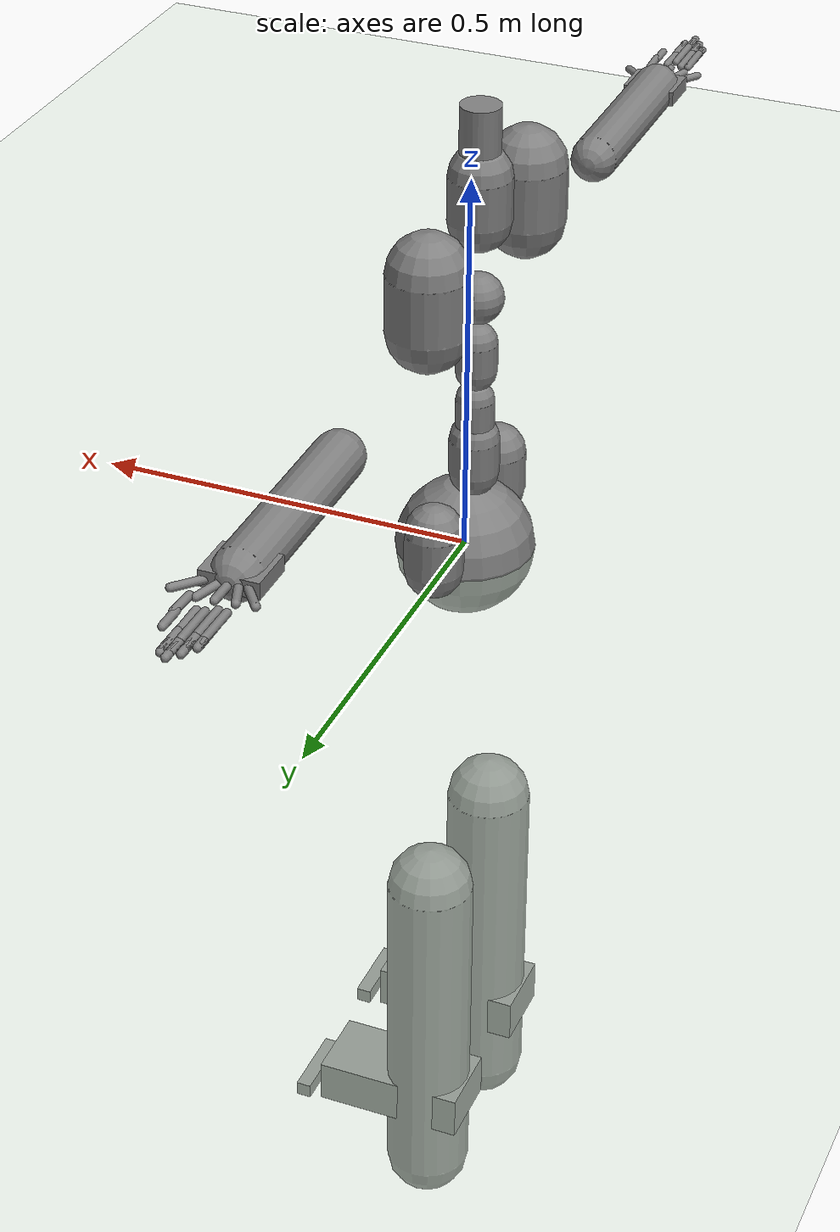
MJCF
<?xml version="1.0" ?>
<mujoco model="humanoid">
  <compiler coordinate="local"/>
  <statistic extent="2" center="0 0 1"/>
  <option timestep="0.00555"/>
  <default>
    <motor ctrlrange="-1 1" ctrllimited="true"/>
    <geom type="capsule" condim="1" friction="1.0 0.05 0.05" solimp=".9 .99 .003" solref=".015 1"/>
    <joint type="hinge" damping="0.1" stiffness="5" armature=".007" limited="true" solimplimit="0 .99 .01"/>
    <site size=".04" group="3"/>
  </default>
  <asset>
    <texture type="skybox" builtin="gradient" rgb1=".4 .5 .6" rgb2="0 0 0" width="100" height="100"/>
    <texture builtin="flat" height="1278" mark="cross" markrgb="1 1 1" name="texgeom" random="0.01" rgb1="0.8 0.6 0.4" rgb2="0.8 0.6 0.4" type="cube" width="127"/>
    <texture builtin="checker" height="100" name="texplane" rgb1="0 0 0" rgb2="0.8 0.8 0.8" type="2d" width="100"/>
    <material name="MatPlane" reflectance="0.5" shininess="1" specular="1" texrepeat="60 60" texture="texplane"/>
    <material name="geom" texture="texgeom" texuniform="true"/>
  </asset>
  <worldbody>
    <light cutoff="100" diffuse="1 1 1" dir="-0 0 -1.3" directional="true" exponent="1" pos="0 0 1.3" specular=".1 .1 .1"/>
    <geom conaffinity="1" condim="3" name="floor" pos="0 0 0" rgba="0.8 0.9 0.8 1" size="100 100 .2" type="plane" material="MatPlane"/>
    <body name="pHipOrigin" pos="0 0 0">
      <freejoint name="pHipOrigin"/>
      <geom type="sphere" contype="1" conaffinity="1" density="4629.6296296296305" size="0.08891" pos="0.0000 0.0000 -0.0000"/>
      <body name="jL5S1" pos="-0.01001941 0 0.09017446">
        <geom type="capsule" contype="1" conaffinity="1" density="1000" fromto="0 0 0.01815 0 0 0.06351" size="0.03176"/>
        <joint name="jL5S1_x" type="hinge" pos="0 0 0" axis="1 0 0" stiffness="500" damping="500" armature="0.02" range="-180.0000 180.0000"/>
        <joint name="jL5S1_y" type="hinge" pos="0 0 0" axis="0 1 0" stiffness="500" damping="500" armature="0.02" range="-180.0000 180.0000"/>
        <joint name="jL5S1_z" type="hinge" pos="0 0 0" axis="0 0 1" stiffness="500" damping="500" armature="0.02" range="-180.0000 180.0000"/>
        <body name="jL4L3" pos="0 0 0.06970846">
          <geom type="capsule" contype="1" conaffinity="1" density="1000" fromto="0 0 0.01394 0 0 0.04880" size="0.02440"/>
          <joint name="jL4L3_x" type="hinge" pos="0 0 0" axis="1 0 0" stiffness="500" damping="500" armature="0.02" range="-180.0000 180.0000"/>
          <joint name="jL4L3_y" type="hinge" pos="0 0 0" axis="0 1 0" stiffness="500" damping="500" armature="0.02" range="-180.0000 180.0000"/>
          <joint name="jL4L3_z" type="hinge" pos="0 0 0" axis="0 0 1" stiffness="500" damping="500" armature="0.02" range="-180.0000 180.0000"/>
          <body name="jL1T12" pos="-0.00057717 0 0.07481203">
            <geom type="capsule" contype="1" conaffinity="1" density="1000" fromto="0 0 0.01496 0 0 0.05237" size="0.02618"/>
            <joint name="jL1T12_x" type="hinge" pos="0 0 0" axis="1 0 0" stiffness="500" damping="500" armature="0.02" range="-180.0000 180.0000"/>
            <joint name="jL1T12_y" type="hinge" pos="0 0 0" axis="0 1 0" stiffness="500" damping="500" armature="0.02" range="-180.0000 180.0000"/>
            <joint name="jL1T12_z" type="hinge" pos="0 0 0" axis="0 0 1" stiffness="500" damping="500" armature="0.02" range="-180.0000 180.0000"/>
            <body name="jT9T8" pos="-0.00062367 0 0.08068112">
              <geom type="sphere" contype="1" conaffinity="1" density="1000" size="0.03227" pos="0.000 0.0000 0.032273"/>
              <joint name="jT9T8_x" type="hinge" pos="0 0 0" axis="1 0 0" stiffness="500" damping="500" armature="0.02" range="-180.0000 180.0000"/>
              <joint name="jT9T8_y" type="hinge" pos="0 0 0" axis="0 1 0" stiffness="500" damping="500" armature="0.02" range="-180.0000 180.0000"/>
              <joint name="jT9T8_z" type="hinge" pos="0 0 0" axis="0 0 1" stiffness="500" damping="500" armature="0.02" range="-180.0000 180.0000"/>
              <body name="jT1C7" pos="0 0 0.11273500">
                <geom type="capsule" contype="1" conaffinity="1" density="1000" fromto="0 0 0.02255 0 0 0.07891" size="0.03946"/>
                <joint name="jT1C7_x" type="hinge" pos="0 0 0" axis="1 0 0" stiffness="500" damping="500" armature="0.02" range="-180.0000 180.0000"/>
                <joint name="jT1C7_y" type="hinge" pos="0 0 0" axis="0 1 0" stiffness="500" damping="500" armature="0.02" range="-180.0000 180.0000"/>
                <joint name="jT1C7_z" type="hinge" pos="0 0 0" axis="0 0 1" stiffness="500" damping="500" armature="0.02" range="-180.0000 180.0000"/>
                <body name="jC1Head" pos="0.00099123 0 0.08401980">
                  <geom type="cylinder" contype="1" conaffinity="1" density="1000" fromto="0 0 0 0 0 0.08403" size="0.02521"/>
                  <joint name="jC1Head_x" type="hinge" pos="0 0 0" axis="1 0 0" stiffness="500" damping="500" armature="0.02" range="-180.0000 180.0000"/>
                  <joint name="jC1Head_y" type="hinge" pos="0 0 0" axis="0 1 0" stiffness="500" damping="500" armature="0.02" range="-180.0000 180.0000"/>
                  <joint name="jC1Head_z" type="hinge" pos="0 0 0" axis="0 0 1" stiffness="500" damping="500" armature="0.02" range="-180.0000 180.0000"/>
                </body>
              </body>
              <body name="jRightT4Shoulder" pos="0 -0.01534223 0.03740774">
                <geom type="sphere" contype="1" conaffinity="1" density="1000" size="0.01617" pos="0 0 0"/>
                <joint name="jRightT4Shoulder_x" type="hinge" pos="0 0 0" axis="1 0 0" stiffness="500" damping="500" armature="0.02" range="-180.0000 180.0000"/>
                <joint name="jRightT4Shoulder_y" type="hinge" pos="0 0 0" axis="0 1 0" stiffness="500" damping="500" armature="0.02" range="-180.0000 180.0000"/>
                <joint name="jRightT4Shoulder_z" type="hinge" pos="0 0 0" axis="0 0 1" stiffness="500" damping="500" armature="0.02" range="-180.0000 180.0000"/>
                <body name="jRightShoulder" pos="0 -0.14461945 0">
                  <geom type="capsule" contype="1" conaffinity="1" density="1000" fromto="0 0 0.02892 0 0 0.10123" size="0.05062"/>
                  <joint name="jRightShoulder_x" type="hinge" pos="0 0 0" axis="1 0 0" stiffness="500" damping="500" armature="0.02" range="-180.0000 180.0000"/>
                  <joint name="jRightShoulder_y" type="hinge" pos="0 0 0" axis="0 1 0" stiffness="500" damping="500" armature="0.02" range="-180.0000 180.0000"/>
                  <joint name="jRightShoulder_z" type="hinge" pos="0 0 0" axis="0 0 1" stiffness="500" damping="500" armature="0.02" range="-180.0000 180.0000"/>
                  <body name="jRightElbow" pos="0 -0.25425214 0">
                    <geom type="capsule" contype="1" conaffinity="1" density="1000" fromto="0 0 0 0.00000000 -0.25425214 0.00000000" size="0.03051"/>
                    <joint name="jRightElbow_x" type="hinge" pos="0 0 0" axis="1 0 0" stiffness="500" damping="500" armature="0.02" range="-180.0000 180.0000"/>
                    <joint name="jRightElbow_y" type="hinge" pos="0 0 0" axis="0 1 0" stiffness="500" damping="500" armature="0.02" range="-180.0000 180.0000"/>
                    <joint name="jRightElbow_z" type="hinge" pos="0 0 0" axis="0 0 1" stiffness="500" damping="500" armature="0.02" range="-180.0000 180.0000"/>
                    <body name="jRightWrist" pos="0.00010034 -0.24931442 0">
                      <geom density="1000" type="box" pos="0 0 0" size="0.035 0.03 0.01" quat="1.0000 0.0000 0.0000 0.0000"/>
                      <joint name="jRightWrist_x" type="hinge" pos="0 0 0" axis="1 0 0" stiffness="500" damping="500" armature="0.02" range="-180.0000 180.0000"/>
                      <joint name="jRightWrist_y" type="hinge" pos="0 0 0" axis="0 1 0" stiffness="500" damping="500" armature="0.02" range="-180.0000 180.0000"/>
                      <joint name="jRightWrist_z" type="hinge" pos="0 0 0" axis="0 0 1" stiffness="500" damping="500" armature="0.02" range="-180.0000 180.0000"/>
                      <body name="jRightFirstCMC" pos="0.02759620 -0.02645250 -0.00124972">
                        <geom type="capsule" contype="1" conaffinity="1" density="1000" fromto="0 0 0 0.02759620 -0.02645250 -0.00124972" size="0.005"/>
                        <joint name="jRightFirstCMC_x" type="hinge" pos="0 0 0" axis="1 0 0" stiffness="500" damping="500" armature="0.02" range="-180.0000 180.0000"/>
                        <joint name="jRightFirstCMC_y" type="hinge" pos="0 0 0" axis="0 1 0" stiffness="500" damping="500" armature="0.02" range="-180.0000 180.0000"/>
                        <joint name="jRightFirstCMC_z" type="hinge" pos="0 0 0" axis="0 0 1" stiffness="500" damping="500" armature="0.02" range="-180.0000 180.0000"/>
                        <body name="jRightFirstMCP" pos="0.00123857 -0.03495150 0.00073852">
                          <geom type="capsule" contype="1" conaffinity="1" density="1000" fromto="0 0 0 0.00123857 -0.03495150 0.00073852" size="0.005"/>
                          <joint name="jRightFirstMCP_x" type="hinge" pos="0 0 0" axis="1 0 0" stiffness="500" damping="500" armature="0.02" range="-180.0000 180.0000"/>
                          <joint name="jRightFirstMCP_y" type="hinge" pos="0 0 0" axis="0 1 0" stiffness="500" damping="500" armature="0.02" range="-180.0000 180.0000"/>
                          <joint name="jRightFirstMCP_z" type="hinge" pos="0 0 0" axis="0 0 1" stiffness="500" damping="500" armature="0.02" range="-180.0000 180.0000"/>
                          <body name="jRightIP" pos="0 -0.03073209 0">
                            <geom type="capsule" contype="1" conaffinity="1" density="1000" fromto="0 0 0 0.00000000 -0.03073209 0.00000000" size="0.005"/>
                            <joint name="jRightIP_x" type="hinge" pos="0 0 0" axis="1 0 0" stiffness="500" damping="500" armature="0.02" range="-180.0000 180.0000"/>
                            <joint name="jRightIP_y" type="hinge" pos="0 0 0" axis="0 1 0" stiffness="500" damping="500" armature="0.02" range="-180.0000 180.0000"/>
                            <joint name="jRightIP_z" type="hinge" pos="0 0 0" axis="0 0 1" stiffness="500" damping="500" armature="0.02" range="-180.0000 180.0000"/>
                          </body>
                        </body>
                      </body>
                      <body name="jRightSecondCMC" pos="0.01055047 -0.03082513 -0.00053767">
                        <geom type="capsule" contype="1" conaffinity="1" density="1000" fromto="0 0 0 0.01055047 -0.03082513 -0.00053767" size="0.005"/>
                        <joint name="jRightSecondCMC_x" type="hinge" pos="0 0 0" axis="1 0 0" stiffness="500" damping="500" armature="0.02" range="-180.0000 180.0000"/>
                        <joint name="jRightSecondCMC_y" type="hinge" pos="0 0 0" axis="0 1 0" stiffness="500" damping="500" armature="0.02" range="-180.0000 180.0000"/>
                        <joint name="jRightSecondCMC_z" type="hinge" pos="0 0 0" axis="0 0 1" stiffness="500" damping="500" armature="0.02" range="-180.0000 180.0000"/>
                        <body name="jRightSecondMCP" pos="-0.00033000 -0.05263279 -0.00054598">
                          <geom type="capsule" contype="1" conaffinity="1" density="1000" fromto="0 0 0 -0.00033000 -0.05263279 -0.00054598" size="0.005"/>
                          <joint name="jRightSecondMCP_x" type="hinge" pos="0 0 0" axis="1 0 0" stiffness="500" damping="500" armature="0.02" range="-180.0000 180.0000"/>
                          <joint name="jRightSecondMCP_y" type="hinge" pos="0 0 0" axis="0 1 0" stiffness="500" damping="500" armature="0.02" range="-180.0000 180.0000"/>
                          <joint name="jRightSecondMCP_z" type="hinge" pos="0 0 0" axis="0 0 1" stiffness="500" damping="500" armature="0.02" range="-180.0000 180.0000"/>
                          <body name="jRightSecondPIP" pos="0 -0.04028815 0">
                            <geom type="capsule" contype="1" conaffinity="1" density="1000" fromto="0 0 0 0.00000000 -0.04028815 0.00000000" size="0.005"/>
                            <joint name="jRightSecondPIP_x" type="hinge" pos="0 0 0" axis="1 0 0" stiffness="500" damping="500" armature="0.02" range="-180.0000 180.0000"/>
                            <joint name="jRightSecondPIP_y" type="hinge" pos="0 0 0" axis="0 1 0" stiffness="500" damping="500" armature="0.02" range="-180.0000 180.0000"/>
                            <joint name="jRightSecondPIP_z" type="hinge" pos="0 0 0" axis="0 0 1" stiffness="500" damping="500" armature="0.02" range="-180.0000 180.0000"/>
                            <body name="jRightSecondDIP" pos="0 -0.02023493 0">
                              <geom type="capsule" contype="1" conaffinity="1" density="1000" fromto="0 0 0 0.00000000 -0.02023493 0.00000000" size="0.005"/>
                              <joint name="jRightSecondDIP_x" type="hinge" pos="0 0 0" axis="1 0 0" stiffness="500" damping="500" armature="0.02" range="-180.0000 180.0000"/>
                              <joint name="jRightSecondDIP_y" type="hinge" pos="0 0 0" axis="0 1 0" stiffness="500" damping="500" armature="0.02" range="-180.0000 180.0000"/>
                              <joint name="jRightSecondDIP_z" type="hinge" pos="0 0 0" axis="0 0 1" stiffness="500" damping="500" armature="0.02" range="-180.0000 180.0000"/>
                            </body>
                          </body>
                        </body>
                      </body>
                      <body name="jRightThirdCMC" pos="-0.00060296 -0.03260669 0.00137083">
                        <geom type="capsule" contype="1" conaffinity="1" density="1000" fromto="0 0 0 -0.00060296 -0.03260669 0.00137083" size="0.005"/>
                        <joint name="jRightThirdCMC_x" type="hinge" pos="0 0 0" axis="1 0 0" stiffness="500" damping="500" armature="0.02" range="-180.0000 180.0000"/>
                        <joint name="jRightThirdCMC_y" type="hinge" pos="0 0 0" axis="0 1 0" stiffness="500" damping="500" armature="0.02" range="-180.0000 180.0000"/>
                        <joint name="jRightThirdCMC_z" type="hinge" pos="0 0 0" axis="0 0 1" stiffness="500" damping="500" armature="0.02" range="-180.0000 180.0000"/>
                        <body name="jRightThirdMCP" pos="-0.00066174 -0.05482563 0.00149159">
                          <geom type="capsule" contype="1" conaffinity="1" density="1000" fromto="0 0 0 -0.00066174 -0.05482563 0.00149159" size="0.005"/>
                          <joint name="jRightThirdMCP_x" type="hinge" pos="0 0 0" axis="1 0 0" stiffness="500" damping="500" armature="0.02" range="-180.0000 180.0000"/>
                          <joint name="jRightThirdMCP_y" type="hinge" pos="0 0 0" axis="0 1 0" stiffness="500" damping="500" armature="0.02" range="-180.0000 180.0000"/>
                          <joint name="jRightThirdMCP_z" type="hinge" pos="0 0 0" axis="0 0 1" stiffness="500" damping="500" armature="0.02" range="-180.0000 180.0000"/>
                          <body name="jRightThirdPIP" pos="0 -0.04051179 0">
                            <geom type="capsule" contype="1" conaffinity="1" density="1000" fromto="0 0 0 0.00000000 -0.04051179 0.00000000" size="0.005"/>
                            <joint name="jRightThirdPIP_x" type="hinge" pos="0 0 0" axis="1 0 0" stiffness="500" damping="500" armature="0.02" range="-180.0000 180.0000"/>
                            <joint name="jRightThirdPIP_y" type="hinge" pos="0 0 0" axis="0 1 0" stiffness="500" damping="500" armature="0.02" range="-180.0000 180.0000"/>
                            <joint name="jRightThirdPIP_z" type="hinge" pos="0 0 0" axis="0 0 1" stiffness="500" damping="500" armature="0.02" range="-180.0000 180.0000"/>
                            <body name="jRightThirdDIP" pos="0 -0.02395567 0">
                              <geom type="capsule" contype="1" conaffinity="1" density="1000" fromto="0 0 0 0.00000000 -0.02395567 0.00000000" size="0.005"/>
                              <joint name="jRightThirdDIP_x" type="hinge" pos="0 0 0" axis="1 0 0" stiffness="500" damping="500" armature="0.02" range="-180.0000 180.0000"/>
                              <joint name="jRightThirdDIP_y" type="hinge" pos="0 0 0" axis="0 1 0" stiffness="500" damping="500" armature="0.02" range="-180.0000 180.0000"/>
                              <joint name="jRightThirdDIP_z" type="hinge" pos="0 0 0" axis="0 0 1" stiffness="500" damping="500" armature="0.02" range="-180.0000 180.0000"/>
                            </body>
                          </body>
                        </body>
                      </body>
                      <body name="jRightFourthCMC" pos="-0.01101426 -0.03067653 0.00072208">
                        <geom type="capsule" contype="1" conaffinity="1" density="1000" fromto="0 0 0 -0.01101426 -0.03067653 0.00072208" size="0.005"/>
                        <joint name="jRightFourthCMC_x" type="hinge" pos="0 0 0" axis="1 0 0" stiffness="500" damping="500" armature="0.02" range="-180.0000 180.0000"/>
                        <joint name="jRightFourthCMC_y" type="hinge" pos="0 0 0" axis="0 1 0" stiffness="500" damping="500" armature="0.02" range="-180.0000 180.0000"/>
                        <joint name="jRightFourthCMC_z" type="hinge" pos="0 0 0" axis="0 0 1" stiffness="500" damping="500" armature="0.02" range="-180.0000 180.0000"/>
                        <body name="jRightFourthMCP" pos="-0.00035158 -0.04818744 0.00075706">
                          <geom type="capsule" contype="1" conaffinity="1" density="1000" fromto="0 0 0 -0.00035158 -0.04818744 0.00075706" size="0.005"/>
                          <joint name="jRightFourthMCP_x" type="hinge" pos="0 0 0" axis="1 0 0" stiffness="500" damping="500" armature="0.02" range="-180.0000 180.0000"/>
                          <joint name="jRightFourthMCP_y" type="hinge" pos="0 0 0" axis="0 1 0" stiffness="500" damping="500" armature="0.02" range="-180.0000 180.0000"/>
                          <joint name="jRightFourthMCP_z" type="hinge" pos="0 0 0" axis="0 0 1" stiffness="500" damping="500" armature="0.02" range="-180.0000 180.0000"/>
                          <body name="jRightFourthPIP" pos="0 -0.03843225 0">
                            <geom type="capsule" contype="1" conaffinity="1" density="1000" fromto="0 0 0 0.00000000 -0.03843225 0.00000000" size="0.005"/>
                            <joint name="jRightFourthPIP_x" type="hinge" pos="0 0 0" axis="1 0 0" stiffness="500" damping="500" armature="0.02" range="-180.0000 180.0000"/>
                            <joint name="jRightFourthPIP_y" type="hinge" pos="0 0 0" axis="0 1 0" stiffness="500" damping="500" armature="0.02" range="-180.0000 180.0000"/>
                            <joint name="jRightFourthPIP_z" type="hinge" pos="0 0 0" axis="0 0 1" stiffness="500" damping="500" armature="0.02" range="-180.0000 180.0000"/>
                            <body name="jRightFourthDIP" pos="0 -0.02281113 0">
                              <geom type="capsule" contype="1" conaffinity="1" density="1000" fromto="0 0 0 0.00000000 -0.02281113 0.00000000" size="0.005"/>
                              <joint name="jRightFourthDIP_x" type="hinge" pos="0 0 0" axis="1 0 0" stiffness="500" damping="500" armature="0.02" range="-180.0000 180.0000"/>
                              <joint name="jRightFourthDIP_y" type="hinge" pos="0 0 0" axis="0 1 0" stiffness="500" damping="500" armature="0.02" range="-180.0000 180.0000"/>
                              <joint name="jRightFourthDIP_z" type="hinge" pos="0 0 0" axis="0 0 1" stiffness="500" damping="500" armature="0.02" range="-180.0000 180.0000"/>
                            </body>
                          </body>
                        </body>
                      </body>
                      <body name="jRightFifthCMC" pos="-0.02101609 -0.02928353 0.00057767">
                        <geom type="capsule" contype="1" conaffinity="1" density="1000" fromto="0 0 0 -0.02101609 -0.02928353 0.00057767" size="0.005"/>
                        <joint name="jRightFifthCMC_x" type="hinge" pos="0 0 0" axis="1 0 0" stiffness="500" damping="500" armature="0.02" range="-180.0000 180.0000"/>
                        <joint name="jRightFifthCMC_y" type="hinge" pos="0 0 0" axis="0 1 0" stiffness="500" damping="500" armature="0.02" range="-180.0000 180.0000"/>
                        <joint name="jRightFifthCMC_z" type="hinge" pos="0 0 0" axis="0 0 1" stiffness="500" damping="500" armature="0.02" range="-180.0000 180.0000"/>
                        <body name="jRightFifthMCP" pos="-0.00000746 -0.05052674 0.00069531">
                          <geom type="capsule" contype="1" conaffinity="1" density="1000" fromto="0 0 0 -0.00000746 -0.05052674 0.00069531" size="0.005"/>
                          <joint name="jRightFifthMCP_x" type="hinge" pos="0 0 0" axis="1 0 0" stiffness="500" damping="500" armature="0.02" range="-180.0000 180.0000"/>
                          <joint name="jRightFifthMCP_y" type="hinge" pos="0 0 0" axis="0 1 0" stiffness="500" damping="500" armature="0.02" range="-180.0000 180.0000"/>
                          <joint name="jRightFifthMCP_z" type="hinge" pos="0 0 0" axis="0 0 1" stiffness="500" damping="500" armature="0.02" range="-180.0000 180.0000"/>
                          <body name="jRightFifthPIP" pos="0 -0.03214493 0">
                            <geom type="capsule" contype="1" conaffinity="1" density="1000" fromto="0 0 0 0.00000000 -0.03214493 0.00000000" size="0.005"/>
                            <joint name="jRightFifthPIP_x" type="hinge" pos="0 0 0" axis="1 0 0" stiffness="500" damping="500" armature="0.02" range="-180.0000 180.0000"/>
                            <joint name="jRightFifthPIP_y" type="hinge" pos="0 0 0" axis="0 1 0" stiffness="500" damping="500" armature="0.02" range="-180.0000 180.0000"/>
                            <joint name="jRightFifthPIP_z" type="hinge" pos="0 0 0" axis="0 0 1" stiffness="500" damping="500" armature="0.02" range="-180.0000 180.0000"/>
                            <body name="jRightFifthDIP" pos="0 -0.01745579 0">
                              <geom type="capsule" contype="1" conaffinity="1" density="1000" fromto="0 0 0 0.00000000 -0.01745579 0.00000000" size="0.005"/>
                              <joint name="jRightFifthDIP_x" type="hinge" pos="0 0 0" axis="1 0 0" stiffness="500" damping="500" armature="0.02" range="-180.0000 180.0000"/>
                              <joint name="jRightFifthDIP_y" type="hinge" pos="0 0 0" axis="0 1 0" stiffness="500" damping="500" armature="0.02" range="-180.0000 180.0000"/>
                              <joint name="jRightFifthDIP_z" type="hinge" pos="0 0 0" axis="0 0 1" stiffness="500" damping="500" armature="0.02" range="-180.0000 180.0000"/>
                            </body>
                          </body>
                        </body>
                      </body>
                    </body>
                  </body>
                </body>
              </body>
              <body name="jLeftT4Shoulder" pos="0 0.01538948 0.03752293">
                <geom type="sphere" contype="1" conaffinity="1" density="1000" size="0.01622" pos="0 0 0"/>
                <joint name="jLeftT4Shoulder_x" type="hinge" pos="0 0 0" axis="1 0 0" stiffness="500" damping="500" armature="0.02" range="-180.0000 180.0000"/>
                <joint name="jLeftT4Shoulder_y" type="hinge" pos="0 0 0" axis="0 1 0" stiffness="500" damping="500" armature="0.02" range="-180.0000 180.0000"/>
                <joint name="jLeftT4Shoulder_z" type="hinge" pos="0 0 0" axis="0 0 1" stiffness="500" damping="500" armature="0.02" range="-180.0000 180.0000"/>
                <body name="jLeftShoulder" pos="0 0.14523377 0">
                  <geom type="capsule" contype="1" conaffinity="1" density="1000" fromto="0 0 0.02905 0 0 0.10166" size="0.05083"/>
                  <joint name="jLeftShoulder_x" type="hinge" pos="0 0 0" axis="1 0 0" stiffness="500" damping="500" armature="0.02" range="-180.0000 180.0000"/>
                  <joint name="jLeftShoulder_y" type="hinge" pos="0 0 0" axis="0 1 0" stiffness="500" damping="500" armature="0.02" range="-180.0000 180.0000"/>
                  <joint name="jLeftShoulder_z" type="hinge" pos="0 0 0" axis="0 0 1" stiffness="500" damping="500" armature="0.02" range="-180.0000 180.0000"/>
                  <body name="jLeftElbow" pos="0 0.25449681 0">
                    <geom type="capsule" contype="1" conaffinity="1" density="1000" fromto="0 0 0 0.00000000 0.25449681 0.00000000" size="0.03054"/>
                    <joint name="jLeftElbow_x" type="hinge" pos="0 0 0" axis="1 0 0" stiffness="500" damping="500" armature="0.02" range="-180.0000 180.0000"/>
                    <joint name="jLeftElbow_y" type="hinge" pos="0 0 0" axis="0 1 0" stiffness="500" damping="500" armature="0.02" range="-180.0000 180.0000"/>
                    <joint name="jLeftElbow_z" type="hinge" pos="0 0 0" axis="0 0 1" stiffness="500" damping="500" armature="0.02" range="-180.0000 180.0000"/>
                    <body name="jLeftWrist" pos="0.00010047 0.24963573 0">
                      <geom density="1000" type="box" pos="0 0 0" size="0.035 0.03 0.01" quat="1.0000 0.0000 0.0000 0.0000"/>
                      <joint name="jLeftWrist_x" type="hinge" pos="0 0 0" axis="1 0 0" stiffness="500" damping="500" armature="0.02" range="-180.0000 180.0000"/>
                      <joint name="jLeftWrist_y" type="hinge" pos="0 0 0" axis="0 1 0" stiffness="500" damping="500" armature="0.02" range="-180.0000 180.0000"/>
                      <joint name="jLeftWrist_z" type="hinge" pos="0 0 0" axis="0 0 1" stiffness="500" damping="500" armature="0.02" range="-180.0000 180.0000"/>
                      <body name="jLeftFirstCMC" pos="0.02701018 0.02707396 -0.00120889">
                        <geom type="capsule" contype="1" conaffinity="1" density="1000" fromto="0 0 0 0.02701018 0.02707396 -0.00120889" size="0.005"/>
                        <joint name="jLeftFirstCMC_x" type="hinge" pos="0 0 0" axis="1 0 0" stiffness="500" damping="500" armature="0.02" range="-180.0000 180.0000"/>
                        <joint name="jLeftFirstCMC_y" type="hinge" pos="0 0 0" axis="0 1 0" stiffness="500" damping="500" armature="0.02" range="-180.0000 180.0000"/>
                        <joint name="jLeftFirstCMC_z" type="hinge" pos="0 0 0" axis="0 0 1" stiffness="500" damping="500" armature="0.02" range="-180.0000 180.0000"/>
                        <body name="jLeftFirstMCP" pos="0.00122663 0.03495072 0.00071972">
                          <geom type="capsule" contype="1" conaffinity="1" density="1000" fromto="0 0 0 0.00122663 0.03495072 0.00071972" size="0.005"/>
                          <joint name="jLeftFirstMCP_x" type="hinge" pos="0 0 0" axis="1 0 0" stiffness="500" damping="500" armature="0.02" range="-180.0000 180.0000"/>
                          <joint name="jLeftFirstMCP_y" type="hinge" pos="0 0 0" axis="0 1 0" stiffness="500" damping="500" armature="0.02" range="-180.0000 180.0000"/>
                          <joint name="jLeftFirstMCP_z" type="hinge" pos="0 0 0" axis="0 0 1" stiffness="500" damping="500" armature="0.02" range="-180.0000 180.0000"/>
                          <body name="jLeftIP" pos="0 0.03073209 0">
                            <geom type="capsule" contype="1" conaffinity="1" density="1000" fromto="0 0 0 0.00000000 0.03073209 0.00000000" size="0.005"/>
                            <joint name="jLeftIP_x" type="hinge" pos="0 0 0" axis="1 0 0" stiffness="500" damping="500" armature="0.02" range="-180.0000 180.0000"/>
                            <joint name="jLeftIP_y" type="hinge" pos="0 0 0" axis="0 1 0" stiffness="500" damping="500" armature="0.02" range="-180.0000 180.0000"/>
                            <joint name="jLeftIP_z" type="hinge" pos="0 0 0" axis="0 0 1" stiffness="500" damping="500" armature="0.02" range="-180.0000 180.0000"/>
                          </body>
                        </body>
                      </body>
                      <body name="jLeftSecondCMC" pos="0.01067199 0.03076842 -0.00054211">
                        <geom type="capsule" contype="1" conaffinity="1" density="1000" fromto="0 0 0 0.01067199 0.03076842 -0.00054211" size="0.005"/>
                        <joint name="jLeftSecondCMC_x" type="hinge" pos="0 0 0" axis="1 0 0" stiffness="500" damping="500" armature="0.02" range="-180.0000 180.0000"/>
                        <joint name="jLeftSecondCMC_y" type="hinge" pos="0 0 0" axis="0 1 0" stiffness="500" damping="500" armature="0.02" range="-180.0000 180.0000"/>
                        <joint name="jLeftSecondCMC_z" type="hinge" pos="0 0 0" axis="0 0 1" stiffness="500" damping="500" armature="0.02" range="-180.0000 180.0000"/>
                        <body name="jLeftSecondMCP" pos="-0.00028774 0.05263387 -0.00055272">
                          <geom type="capsule" contype="1" conaffinity="1" density="1000" fromto="0 0 0 -0.00028774 0.05263387 -0.00055272" size="0.005"/>
                          <joint name="jLeftSecondMCP_x" type="hinge" pos="0 0 0" axis="1 0 0" stiffness="500" damping="500" armature="0.02" range="-180.0000 180.0000"/>
                          <joint name="jLeftSecondMCP_y" type="hinge" pos="0 0 0" axis="0 1 0" stiffness="500" damping="500" armature="0.02" range="-180.0000 180.0000"/>
                          <joint name="jLeftSecondMCP_z" type="hinge" pos="0 0 0" axis="0 0 1" stiffness="500" damping="500" armature="0.02" range="-180.0000 180.0000"/>
                          <body name="jLeftSecondPIP" pos="0 0.04028815 0">
                            <geom type="capsule" contype="1" conaffinity="1" density="1000" fromto="0 0 0 0.00000000 0.04028815 0.00000000" size="0.005"/>
                            <joint name="jLeftSecondPIP_x" type="hinge" pos="0 0 0" axis="1 0 0" stiffness="500" damping="500" armature="0.02" range="-180.0000 180.0000"/>
                            <joint name="jLeftSecondPIP_y" type="hinge" pos="0 0 0" axis="0 1 0" stiffness="500" damping="500" armature="0.02" range="-180.0000 180.0000"/>
                            <joint name="jLeftSecondPIP_z" type="hinge" pos="0 0 0" axis="0 0 1" stiffness="500" damping="500" armature="0.02" range="-180.0000 180.0000"/>
                            <body name="jLeftSecondDIP" pos="0 0.02023493 0">
                              <geom type="capsule" contype="1" conaffinity="1" density="1000" fromto="0 0 0 0.00000000 0.02023493 0.00000000" size="0.005"/>
                              <joint name="jLeftSecondDIP_x" type="hinge" pos="0 0 0" axis="1 0 0" stiffness="500" damping="500" armature="0.02" range="-180.0000 180.0000"/>
                              <joint name="jLeftSecondDIP_y" type="hinge" pos="0 0 0" axis="0 1 0" stiffness="500" damping="500" armature="0.02" range="-180.0000 180.0000"/>
                              <joint name="jLeftSecondDIP_z" type="hinge" pos="0 0 0" axis="0 0 1" stiffness="500" damping="500" armature="0.02" range="-180.0000 180.0000"/>
                            </body>
                          </body>
                        </body>
                      </body>
                      <body name="jLeftThirdCMC" pos="-0.00060650 0.03260962 0.00132514">
                        <geom type="capsule" contype="1" conaffinity="1" density="1000" fromto="0 0 0 -0.00060650 0.03260962 0.00132514" size="0.005"/>
                        <joint name="jLeftThirdCMC_x" type="hinge" pos="0 0 0" axis="1 0 0" stiffness="500" damping="500" armature="0.02" range="-180.0000 180.0000"/>
                        <joint name="jLeftThirdCMC_y" type="hinge" pos="0 0 0" axis="0 1 0" stiffness="500" damping="500" armature="0.02" range="-180.0000 180.0000"/>
                        <joint name="jLeftThirdCMC_z" type="hinge" pos="0 0 0" axis="0 0 1" stiffness="500" damping="500" armature="0.02" range="-180.0000 180.0000"/>
                        <body name="jLeftThirdMCP" pos="-0.00066709 0.05482669 0.00146161">
                          <geom type="capsule" contype="1" conaffinity="1" density="1000" fromto="0 0 0 -0.00066709 0.05482669 0.00146161" size="0.005"/>
                          <joint name="jLeftThirdMCP_x" type="hinge" pos="0 0 0" axis="1 0 0" stiffness="500" damping="500" armature="0.02" range="-180.0000 180.0000"/>
                          <joint name="jLeftThirdMCP_y" type="hinge" pos="0 0 0" axis="0 1 0" stiffness="500" damping="500" armature="0.02" range="-180.0000 180.0000"/>
                          <joint name="jLeftThirdMCP_z" type="hinge" pos="0 0 0" axis="0 0 1" stiffness="500" damping="500" armature="0.02" range="-180.0000 180.0000"/>
                          <body name="jLeftThirdPIP" pos="0 0.04051179 0">
                            <geom type="capsule" contype="1" conaffinity="1" density="1000" fromto="0 0 0 0.00000000 0.04051179 0.00000000" size="0.005"/>
                            <joint name="jLeftThirdPIP_x" type="hinge" pos="0 0 0" axis="1 0 0" stiffness="500" damping="500" armature="0.02" range="-180.0000 180.0000"/>
                            <joint name="jLeftThirdPIP_y" type="hinge" pos="0 0 0" axis="0 1 0" stiffness="500" damping="500" armature="0.02" range="-180.0000 180.0000"/>
                            <joint name="jLeftThirdPIP_z" type="hinge" pos="0 0 0" axis="0 0 1" stiffness="500" damping="500" armature="0.02" range="-180.0000 180.0000"/>
                            <body name="jLeftThirdDIP" pos="0 0.02395567 0">
                              <geom type="capsule" contype="1" conaffinity="1" density="1000" fromto="0 0 0 0.00000000 0.02395567 0.00000000" size="0.005"/>
                              <joint name="jLeftThirdDIP_x" type="hinge" pos="0 0 0" axis="1 0 0" stiffness="500" damping="500" armature="0.02" range="-180.0000 180.0000"/>
                              <joint name="jLeftThirdDIP_y" type="hinge" pos="0 0 0" axis="0 1 0" stiffness="500" damping="500" armature="0.02" range="-180.0000 180.0000"/>
                              <joint name="jLeftThirdDIP_z" type="hinge" pos="0 0 0" axis="0 0 1" stiffness="500" damping="500" armature="0.02" range="-180.0000 180.0000"/>
                            </body>
                          </body>
                        </body>
                      </body>
                      <body name="jLeftFourthCMC" pos="-0.01141841 0.03051961 0.00077081">
                        <geom type="capsule" contype="1" conaffinity="1" density="1000" fromto="0 0 0 -0.01141841 0.03051961 0.00077081" size="0.005"/>
                        <joint name="jLeftFourthCMC_x" type="hinge" pos="0 0 0" axis="1 0 0" stiffness="500" damping="500" armature="0.02" range="-180.0000 180.0000"/>
                        <joint name="jLeftFourthCMC_y" type="hinge" pos="0 0 0" axis="0 1 0" stiffness="500" damping="500" armature="0.02" range="-180.0000 180.0000"/>
                        <joint name="jLeftFourthCMC_z" type="hinge" pos="0 0 0" axis="0 0 1" stiffness="500" damping="500" armature="0.02" range="-180.0000 180.0000"/>
                        <body name="jLeftFourthMCP" pos="-0.00037809 0.04818468 0.00080068">
                          <geom type="capsule" contype="1" conaffinity="1" density="1000" fromto="0 0 0 -0.00037809 0.04818468 0.00080068" size="0.005"/>
                          <joint name="jLeftFourthMCP_x" type="hinge" pos="0 0 0" axis="1 0 0" stiffness="500" damping="500" armature="0.02" range="-180.0000 180.0000"/>
                          <joint name="jLeftFourthMCP_y" type="hinge" pos="0 0 0" axis="0 1 0" stiffness="500" damping="500" armature="0.02" range="-180.0000 180.0000"/>
                          <joint name="jLeftFourthMCP_z" type="hinge" pos="0 0 0" axis="0 0 1" stiffness="500" damping="500" armature="0.02" range="-180.0000 180.0000"/>
                          <body name="jLeftFourthPIP" pos="0 0.03843225 0">
                            <geom type="capsule" contype="1" conaffinity="1" density="1000" fromto="0 0 0 0.00000000 0.03843225 0.00000000" size="0.005"/>
                            <joint name="jLeftFourthPIP_x" type="hinge" pos="0 0 0" axis="1 0 0" stiffness="500" damping="500" armature="0.02" range="-180.0000 180.0000"/>
                            <joint name="jLeftFourthPIP_y" type="hinge" pos="0 0 0" axis="0 1 0" stiffness="500" damping="500" armature="0.02" range="-180.0000 180.0000"/>
                            <joint name="jLeftFourthPIP_z" type="hinge" pos="0 0 0" axis="0 0 1" stiffness="500" damping="500" armature="0.02" range="-180.0000 180.0000"/>
                            <body name="jLeftFourthDIP" pos="0 0.02281113 0">
                              <geom type="capsule" contype="1" conaffinity="1" density="1000" fromto="0 0 0 0.00000000 0.02281113 0.00000000" size="0.005"/>
                              <joint name="jLeftFourthDIP_x" type="hinge" pos="0 0 0" axis="1 0 0" stiffness="500" damping="500" armature="0.02" range="-180.0000 180.0000"/>
                              <joint name="jLeftFourthDIP_y" type="hinge" pos="0 0 0" axis="0 1 0" stiffness="500" damping="500" armature="0.02" range="-180.0000 180.0000"/>
                              <joint name="jLeftFourthDIP_z" type="hinge" pos="0 0 0" axis="0 0 1" stiffness="500" damping="500" armature="0.02" range="-180.0000 180.0000"/>
                            </body>
                          </body>
                        </body>
                      </body>
                      <body name="jLeftFifthCMC" pos="-0.02165275 0.02882058 0.00058695">
                        <geom type="capsule" contype="1" conaffinity="1" density="1000" fromto="0 0 0 -0.02165275 0.02882058 0.00058695" size="0.005"/>
                        <joint name="jLeftFifthCMC_x" type="hinge" pos="0 0 0" axis="1 0 0" stiffness="500" damping="500" armature="0.02" range="-180.0000 180.0000"/>
                        <joint name="jLeftFifthCMC_y" type="hinge" pos="0 0 0" axis="0 1 0" stiffness="500" damping="500" armature="0.02" range="-180.0000 180.0000"/>
                        <joint name="jLeftFifthCMC_z" type="hinge" pos="0 0 0" axis="0 0 1" stiffness="500" damping="500" armature="0.02" range="-180.0000 180.0000"/>
                        <body name="jLeftFifthMCP" pos="-0.00001433 0.05052536 0.00072703">
                          <geom type="capsule" contype="1" conaffinity="1" density="1000" fromto="0 0 0 -0.00001433 0.05052536 0.00072703" size="0.005"/>
                          <joint name="jLeftFifthMCP_x" type="hinge" pos="0 0 0" axis="1 0 0" stiffness="500" damping="500" armature="0.02" range="-180.0000 180.0000"/>
                          <joint name="jLeftFifthMCP_y" type="hinge" pos="0 0 0" axis="0 1 0" stiffness="500" damping="500" armature="0.02" range="-180.0000 180.0000"/>
                          <joint name="jLeftFifthMCP_z" type="hinge" pos="0 0 0" axis="0 0 1" stiffness="500" damping="500" armature="0.02" range="-180.0000 180.0000"/>
                          <body name="jLeftFifthPIP" pos="0 0.03214493 0">
                            <geom type="capsule" contype="1" conaffinity="1" density="1000" fromto="0 0 0 0.00000000 0.03214493 0.00000000" size="0.005"/>
                            <joint name="jLeftFifthPIP_x" type="hinge" pos="0 0 0" axis="1 0 0" stiffness="500" damping="500" armature="0.02" range="-180.0000 180.0000"/>
                            <joint name="jLeftFifthPIP_y" type="hinge" pos="0 0 0" axis="0 1 0" stiffness="500" damping="500" armature="0.02" range="-180.0000 180.0000"/>
                            <joint name="jLeftFifthPIP_z" type="hinge" pos="0 0 0" axis="0 0 1" stiffness="500" damping="500" armature="0.02" range="-180.0000 180.0000"/>
                            <body name="jLeftFifthDIP" pos="0 0.01745579 0">
                              <geom type="capsule" contype="1" conaffinity="1" density="1000" fromto="0 0 0 0.00000000 0.01745579 0.00000000" size="0.005"/>
                              <joint name="jLeftFifthDIP_x" type="hinge" pos="0 0 0" axis="1 0 0" stiffness="500" damping="500" armature="0.02" range="-180.0000 180.0000"/>
                              <joint name="jLeftFifthDIP_y" type="hinge" pos="0 0 0" axis="0 1 0" stiffness="500" damping="500" armature="0.02" range="-180.0000 180.0000"/>
                              <joint name="jLeftFifthDIP_z" type="hinge" pos="0 0 0" axis="0 0 1" stiffness="500" damping="500" armature="0.02" range="-180.0000 180.0000"/>
                            </body>
                          </body>
                        </body>
                      </body>
                    </body>
                  </body>
                </body>
              </body>
            </body>
          </body>
        </body>
      </body>
      <body name="jRightHip" pos="-0.00018007 -0.10686013 0.00162104">
        <geom type="capsule" contype="1" conaffinity="1" density="1000" fromto="0 0 0.02137 0 0 0.07481" size="0.03741"/>
        <joint name="jRightHip_x" type="hinge" pos="0 0 0" axis="1 0 0" stiffness="500" damping="500" armature="0.02" range="-180.0000 180.0000"/>
        <joint name="jRightHip_y" type="hinge" pos="0 0 0" axis="0 1 0" stiffness="500" damping="500" armature="0.02" range="-180.0000 180.0000"/>
        <joint name="jRightHip_z" type="hinge" pos="0 0 0" axis="0 0 1" stiffness="500" damping="500" armature="0.02" range="-180.0000 180.0000"/>
        <body name="jRightKnee" pos="0.00005628 0 -0.47199860">
          <geom type="capsule" contype="1" conaffinity="1" density="1000" fromto="0 0 0 0.00005628 0.00000000 -0.47199860" size="0.05664"/>
          <joint name="jRightKnee_x" type="hinge" pos="0 0 0" axis="1 0 0" stiffness="500" damping="500" armature="0.02" range="-180.0000 180.0000"/>
          <joint name="jRightKnee_y" type="hinge" pos="0 0 0" axis="0 1 0" stiffness="500" damping="500" armature="0.02" range="-180.0000 180.0000"/>
          <joint name="jRightKnee_z" type="hinge" pos="0 0 0" axis="0 0 1" stiffness="500" damping="500" armature="0.02" range="-180.0000 180.0000"/>
          <body name="jRightAnkle" pos="0.00036705 0 -0.32507012">
            <geom density="1000" type="box" pos="0.04 0. -0.03" size="0.1 0.05 0.03" quat="1.0 0 0 0"/>
            <joint name="jRightAnkle_x" type="hinge" pos="0 0 0" axis="1 0 0" stiffness="500" damping="500" armature="0.02" range="-180.0000 180.0000"/>
            <joint name="jRightAnkle_y" type="hinge" pos="0 0 0" axis="0 1 0" stiffness="500" damping="500" armature="0.02" range="-180.0000 180.0000"/>
            <joint name="jRightAnkle_z" type="hinge" pos="0 0 0" axis="0 0 1" stiffness="500" damping="500" armature="0.02" range="-180.0000 180.0000"/>
            <body name="jRightBallFoot" pos="0.16692110 0 -0.07657690">
              <geom density="1000" type="box" pos="0 0 0.02" size="0.01 0.05 0.01" quat="1.0 0 0 0"/>
              <joint name="jRightBallFoot_x" type="hinge" pos="0 0 0" axis="1 0 0" stiffness="500" damping="500" armature="0.02" range="-180.0000 180.0000"/>
              <joint name="jRightBallFoot_y" type="hinge" pos="0 0 0" axis="0 1 0" stiffness="500" damping="500" armature="0.02" range="-180.0000 180.0000"/>
              <joint name="jRightBallFoot_z" type="hinge" pos="0 0 0" axis="0 0 1" stiffness="500" damping="500" armature="0.02" range="-180.0000 180.0000"/>
            </body>
          </body>
        </body>
      </body>
      <body name="jLeftHip" pos="-0.00017640 0.10605068 0.00158748">
        <geom type="capsule" contype="1" conaffinity="1" density="1000" fromto="0 0 0.02121 0 0 0.07424" size="0.03712"/>
        <joint name="jLeftHip_x" type="hinge" pos="0 0 0" axis="1 0 0" stiffness="500" damping="500" armature="0.02" range="-180.0000 180.0000"/>
        <joint name="jLeftHip_y" type="hinge" pos="0 0 0" axis="0 1 0" stiffness="500" damping="500" armature="0.02" range="-180.0000 180.0000"/>
        <joint name="jLeftHip_z" type="hinge" pos="0 0 0" axis="0 0 1" stiffness="500" damping="500" armature="0.02" range="-180.0000 180.0000"/>
        <body name="jLeftKnee" pos="0.00005667 0 -0.47527414">
          <geom type="capsule" contype="1" conaffinity="1" density="1000" fromto="0 0 0 0.00005667 0.00000000 -0.47527414" size="0.05703"/>
          <joint name="jLeftKnee_x" type="hinge" pos="0 0 0" axis="1 0 0" stiffness="500" damping="500" armature="0.02" range="-180.0000 180.0000"/>
          <joint name="jLeftKnee_y" type="hinge" pos="0 0 0" axis="0 1 0" stiffness="500" damping="500" armature="0.02" range="-180.0000 180.0000"/>
          <joint name="jLeftKnee_z" type="hinge" pos="0 0 0" axis="0 0 1" stiffness="500" damping="500" armature="0.02" range="-180.0000 180.0000"/>
          <body name="jLeftAnkle" pos="0.00036705 0 -0.32507012">
            <geom density="1000" type="box" pos="0.04 0. -0.03" size="0.1 0.05 0.03" quat="1.0 0 0 0"/>
            <joint name="jLeftAnkle_x" type="hinge" pos="0 0 0" axis="1 0 0" stiffness="500" damping="500" armature="0.02" range="-180.0000 180.0000"/>
            <joint name="jLeftAnkle_y" type="hinge" pos="0 0 0" axis="0 1 0" stiffness="500" damping="500" armature="0.02" range="-180.0000 180.0000"/>
            <joint name="jLeftAnkle_z" type="hinge" pos="0 0 0" axis="0 0 1" stiffness="500" damping="500" armature="0.02" range="-180.0000 180.0000"/>
            <body name="jLeftBallFoot" pos="0.16692108 0 -0.07657689">
              <geom density="1000" type="box" pos="0 0 0.02" size="0.01 0.05 0.01" quat="1.0 0 0 0"/>
              <joint name="jLeftBallFoot_x" type="hinge" pos="0 0 0" axis="1 0 0" stiffness="500" damping="500" armature="0.02" range="-180.0000 180.0000"/>
              <joint name="jLeftBallFoot_y" type="hinge" pos="0 0 0" axis="0 1 0" stiffness="500" damping="500" armature="0.02" range="-180.0000 180.0000"/>
              <joint name="jLeftBallFoot_z" type="hinge" pos="0 0 0" axis="0 0 1" stiffness="500" damping="500" armature="0.02" range="-180.0000 180.0000"/>
            </body>
          </body>
        </body>
      </body>
    </body>
  </worldbody>
  <actuator>
    <motor name="jL5S1_x" joint="jL5S1_x" gear="500"/>
    <motor name="jL5S1_y" joint="jL5S1_y" gear="500"/>
    <motor name="jL5S1_z" joint="jL5S1_z" gear="500"/>
    <motor name="jL4L3_x" joint="jL4L3_x" gear="500"/>
    <motor name="jL4L3_y" joint="jL4L3_y" gear="500"/>
    <motor name="jL4L3_z" joint="jL4L3_z" gear="500"/>
    <motor name="jL1T12_x" joint="jL1T12_x" gear="500"/>
    <motor name="jL1T12_y" joint="jL1T12_y" gear="500"/>
    <motor name="jL1T12_z" joint="jL1T12_z" gear="500"/>
    <motor name="jT9T8_x" joint="jT9T8_x" gear="500"/>
    <motor name="jT9T8_y" joint="jT9T8_y" gear="500"/>
    <motor name="jT9T8_z" joint="jT9T8_z" gear="500"/>
    <motor name="jT1C7_x" joint="jT1C7_x" gear="500"/>
    <motor name="jT1C7_y" joint="jT1C7_y" gear="500"/>
    <motor name="jT1C7_z" joint="jT1C7_z" gear="500"/>
    <motor name="jC1Head_x" joint="jC1Head_x" gear="500"/>
    <motor name="jC1Head_y" joint="jC1Head_y" gear="500"/>
    <motor name="jC1Head_z" joint="jC1Head_z" gear="500"/>
    <motor name="jRightT4Shoulder_x" joint="jRightT4Shoulder_x" gear="500"/>
    <motor name="jRightT4Shoulder_y" joint="jRightT4Shoulder_y" gear="500"/>
    <motor name="jRightT4Shoulder_z" joint="jRightT4Shoulder_z" gear="500"/>
    <motor name="jRightShoulder_x" joint="jRightShoulder_x" gear="500"/>
    <motor name="jRightShoulder_y" joint="jRightShoulder_y" gear="500"/>
    <motor name="jRightShoulder_z" joint="jRightShoulder_z" gear="500"/>
    <motor name="jRightElbow_x" joint="jRightElbow_x" gear="500"/>
    <motor name="jRightElbow_y" joint="jRightElbow_y" gear="500"/>
    <motor name="jRightElbow_z" joint="jRightElbow_z" gear="500"/>
    <motor name="jRightWrist_x" joint="jRightWrist_x" gear="500"/>
    <motor name="jRightWrist_y" joint="jRightWrist_y" gear="500"/>
    <motor name="jRightWrist_z" joint="jRightWrist_z" gear="500"/>
    <motor name="jLeftT4Shoulder_x" joint="jLeftT4Shoulder_x" gear="500"/>
    <motor name="jLeftT4Shoulder_y" joint="jLeftT4Shoulder_y" gear="500"/>
    <motor name="jLeftT4Shoulder_z" joint="jLeftT4Shoulder_z" gear="500"/>
    <motor name="jLeftShoulder_x" joint="jLeftShoulder_x" gear="500"/>
    <motor name="jLeftShoulder_y" joint="jLeftShoulder_y" gear="500"/>
    <motor name="jLeftShoulder_z" joint="jLeftShoulder_z" gear="500"/>
    <motor name="jLeftElbow_x" joint="jLeftElbow_x" gear="500"/>
    <motor name="jLeftElbow_y" joint="jLeftElbow_y" gear="500"/>
    <motor name="jLeftElbow_z" joint="jLeftElbow_z" gear="500"/>
    <motor name="jLeftWrist_x" joint="jLeftWrist_x" gear="500"/>
    <motor name="jLeftWrist_y" joint="jLeftWrist_y" gear="500"/>
    <motor name="jLeftWrist_z" joint="jLeftWrist_z" gear="500"/>
    <motor name="jRightHip_x" joint="jRightHip_x" gear="500"/>
    <motor name="jRightHip_y" joint="jRightHip_y" gear="500"/>
    <motor name="jRightHip_z" joint="jRightHip_z" gear="500"/>
    <motor name="jRightKnee_x" joint="jRightKnee_x" gear="500"/>
    <motor name="jRightKnee_y" joint="jRightKnee_y" gear="500"/>
    <motor name="jRightKnee_z" joint="jRightKnee_z" gear="500"/>
    <motor name="jRightAnkle_x" joint="jRightAnkle_x" gear="500"/>
    <motor name="jRightAnkle_y" joint="jRightAnkle_y" gear="500"/>
    <motor name="jRightAnkle_z" joint="jRightAnkle_z" gear="500"/>
    <motor name="jRightBallFoot_x" joint="jRightBallFoot_x" gear="500"/>
    <motor name="jRightBallFoot_y" joint="jRightBallFoot_y" gear="500"/>
    <motor name="jRightBallFoot_z" joint="jRightBallFoot_z" gear="500"/>
    <motor name="jLeftHip_x" joint="jLeftHip_x" gear="500"/>
    <motor name="jLeftHip_y" joint="jLeftHip_y" gear="500"/>
    <motor name="jLeftHip_z" joint="jLeftHip_z" gear="500"/>
    <motor name="jLeftKnee_x" joint="jLeftKnee_x" gear="500"/>
    <motor name="jLeftKnee_y" joint="jLeftKnee_y" gear="500"/>
    <motor name="jLeftKnee_z" joint="jLeftKnee_z" gear="500"/>
    <motor name="jLeftAnkle_x" joint="jLeftAnkle_x" gear="500"/>
    <motor name="jLeftAnkle_y" joint="jLeftAnkle_y" gear="500"/>
    <motor name="jLeftAnkle_z" joint="jLeftAnkle_z" gear="500"/>
    <motor name="jLeftBallFoot_x" joint="jLeftBallFoot_x" gear="500"/>
    <motor name="jLeftBallFoot_y" joint="jLeftBallFoot_y" gear="500"/>
    <motor name="jLeftBallFoot_z" joint="jLeftBallFoot_z" gear="500"/>
    <motor name="jLeftFirstCMC_x" joint="jLeftFirstCMC_x" gear="500"/>
    <motor name="jLeftFirstCMC_y" joint="jLeftFirstCMC_y" gear="500"/>
    <motor name="jLeftFirstCMC_z" joint="jLeftFirstCMC_z" gear="500"/>
    <motor name="jLeftFirstMCP_x" joint="jLeftFirstMCP_x" gear="500"/>
    <motor name="jLeftFirstMCP_y" joint="jLeftFirstMCP_y" gear="500"/>
    <motor name="jLeftFirstMCP_z" joint="jLeftFirstMCP_z" gear="500"/>
    <motor name="jLeftIP_x" joint="jLeftIP_x" gear="500"/>
    <motor name="jLeftIP_y" joint="jLeftIP_y" gear="500"/>
    <motor name="jLeftIP_z" joint="jLeftIP_z" gear="500"/>
    <motor name="jLeftSecondCMC_x" joint="jLeftSecondCMC_x" gear="500"/>
    <motor name="jLeftSecondCMC_y" joint="jLeftSecondCMC_y" gear="500"/>
    <motor name="jLeftSecondCMC_z" joint="jLeftSecondCMC_z" gear="500"/>
    <motor name="jLeftSecondMCP_x" joint="jLeftSecondMCP_x" gear="500"/>
    <motor name="jLeftSecondMCP_y" joint="jLeftSecondMCP_y" gear="500"/>
    <motor name="jLeftSecondMCP_z" joint="jLeftSecondMCP_z" gear="500"/>
    <motor name="jLeftSecondPIP_x" joint="jLeftSecondPIP_x" gear="500"/>
    <motor name="jLeftSecondPIP_y" joint="jLeftSecondPIP_y" gear="500"/>
    <motor name="jLeftSecondPIP_z" joint="jLeftSecondPIP_z" gear="500"/>
    <motor name="jLeftSecondDIP_x" joint="jLeftSecondDIP_x" gear="500"/>
    <motor name="jLeftSecondDIP_y" joint="jLeftSecondDIP_y" gear="500"/>
    <motor name="jLeftSecondDIP_z" joint="jLeftSecondDIP_z" gear="500"/>
    <motor name="jLeftThirdCMC_x" joint="jLeftThirdCMC_x" gear="500"/>
    <motor name="jLeftThirdCMC_y" joint="jLeftThirdCMC_y" gear="500"/>
    <motor name="jLeftThirdCMC_z" joint="jLeftThirdCMC_z" gear="500"/>
    <motor name="jLeftThirdMCP_x" joint="jLeftThirdMCP_x" gear="500"/>
    <motor name="jLeftThirdMCP_y" joint="jLeftThirdMCP_y" gear="500"/>
    <motor name="jLeftThirdMCP_z" joint="jLeftThirdMCP_z" gear="500"/>
    <motor name="jLeftThirdPIP_x" joint="jLeftThirdPIP_x" gear="500"/>
    <motor name="jLeftThirdPIP_y" joint="jLeftThirdPIP_y" gear="500"/>
    <motor name="jLeftThirdPIP_z" joint="jLeftThirdPIP_z" gear="500"/>
    <motor name="jLeftThirdDIP_x" joint="jLeftThirdDIP_x" gear="500"/>
    <motor name="jLeftThirdDIP_y" joint="jLeftThirdDIP_y" gear="500"/>
    <motor name="jLeftThirdDIP_z" joint="jLeftThirdDIP_z" gear="500"/>
    <motor name="jLeftFourthCMC_x" joint="jLeftFourthCMC_x" gear="500"/>
    <motor name="jLeftFourthCMC_y" joint="jLeftFourthCMC_y" gear="500"/>
    <motor name="jLeftFourthCMC_z" joint="jLeftFourthCMC_z" gear="500"/>
    <motor name="jLeftFourthMCP_x" joint="jLeftFourthMCP_x" gear="500"/>
    <motor name="jLeftFourthMCP_y" joint="jLeftFourthMCP_y" gear="500"/>
    <motor name="jLeftFourthMCP_z" joint="jLeftFourthMCP_z" gear="500"/>
    <motor name="jLeftFourthPIP_x" joint="jLeftFourthPIP_x" gear="500"/>
    <motor name="jLeftFourthPIP_y" joint="jLeftFourthPIP_y" gear="500"/>
    <motor name="jLeftFourthPIP_z" joint="jLeftFourthPIP_z" gear="500"/>
    <motor name="jLeftFourthDIP_x" joint="jLeftFourthDIP_x" gear="500"/>
    <motor name="jLeftFourthDIP_y" joint="jLeftFourthDIP_y" gear="500"/>
    <motor name="jLeftFourthDIP_z" joint="jLeftFourthDIP_z" gear="500"/>
    <motor name="jLeftFifthCMC_x" joint="jLeftFifthCMC_x" gear="500"/>
    <motor name="jLeftFifthCMC_y" joint="jLeftFifthCMC_y" gear="500"/>
    <motor name="jLeftFifthCMC_z" joint="jLeftFifthCMC_z" gear="500"/>
    <motor name="jLeftFifthMCP_x" joint="jLeftFifthMCP_x" gear="500"/>
    <motor name="jLeftFifthMCP_y" joint="jLeftFifthMCP_y" gear="500"/>
    <motor name="jLeftFifthMCP_z" joint="jLeftFifthMCP_z" gear="500"/>
    <motor name="jLeftFifthPIP_x" joint="jLeftFifthPIP_x" gear="500"/>
    <motor name="jLeftFifthPIP_y" joint="jLeftFifthPIP_y" gear="500"/>
    <motor name="jLeftFifthPIP_z" joint="jLeftFifthPIP_z" gear="500"/>
    <motor name="jLeftFifthDIP_x" joint="jLeftFifthDIP_x" gear="500"/>
    <motor name="jLeftFifthDIP_y" joint="jLeftFifthDIP_y" gear="500"/>
    <motor name="jLeftFifthDIP_z" joint="jLeftFifthDIP_z" gear="500"/>
    <motor name="jRightFirstCMC_x" joint="jRightFirstCMC_x" gear="500"/>
    <motor name="jRightFirstCMC_y" joint="jRightFirstCMC_y" gear="500"/>
    <motor name="jRightFirstCMC_z" joint="jRightFirstCMC_z" gear="500"/>
    <motor name="jRightFirstMCP_x" joint="jRightFirstMCP_x" gear="500"/>
    <motor name="jRightFirstMCP_y" joint="jRightFirstMCP_y" gear="500"/>
    <motor name="jRightFirstMCP_z" joint="jRightFirstMCP_z" gear="500"/>
    <motor name="jRightIP_x" joint="jRightIP_x" gear="500"/>
    <motor name="jRightIP_y" joint="jRightIP_y" gear="500"/>
    <motor name="jRightIP_z" joint="jRightIP_z" gear="500"/>
    <motor name="jRightSecondCMC_x" joint="jRightSecondCMC_x" gear="500"/>
    <motor name="jRightSecondCMC_y" joint="jRightSecondCMC_y" gear="500"/>
    <motor name="jRightSecondCMC_z" joint="jRightSecondCMC_z" gear="500"/>
    <motor name="jRightSecondMCP_x" joint="jRightSecondMCP_x" gear="500"/>
    <motor name="jRightSecondMCP_y" joint="jRightSecondMCP_y" gear="500"/>
    <motor name="jRightSecondMCP_z" joint="jRightSecondMCP_z" gear="500"/>
    <motor name="jRightSecondPIP_x" joint="jRightSecondPIP_x" gear="500"/>
    <motor name="jRightSecondPIP_y" joint="jRightSecondPIP_y" gear="500"/>
    <motor name="jRightSecondPIP_z" joint="jRightSecondPIP_z" gear="500"/>
    <motor name="jRightSecondDIP_x" joint="jRightSecondDIP_x" gear="500"/>
    <motor name="jRightSecondDIP_y" joint="jRightSecondDIP_y" gear="500"/>
    <motor name="jRightSecondDIP_z" joint="jRightSecondDIP_z" gear="500"/>
    <motor name="jRightThirdCMC_x" joint="jRightThirdCMC_x" gear="500"/>
    <motor name="jRightThirdCMC_y" joint="jRightThirdCMC_y" gear="500"/>
    <motor name="jRightThirdCMC_z" joint="jRightThirdCMC_z" gear="500"/>
    <motor name="jRightThirdMCP_x" joint="jRightThirdMCP_x" gear="500"/>
    <motor name="jRightThirdMCP_y" joint="jRightThirdMCP_y" gear="500"/>
    <motor name="jRightThirdMCP_z" joint="jRightThirdMCP_z" gear="500"/>
    <motor name="jRightThirdPIP_x" joint="jRightThirdPIP_x" gear="500"/>
    <motor name="jRightThirdPIP_y" joint="jRightThirdPIP_y" gear="500"/>
    <motor name="jRightThirdPIP_z" joint="jRightThirdPIP_z" gear="500"/>
    <motor name="jRightThirdDIP_x" joint="jRightThirdDIP_x" gear="500"/>
    <motor name="jRightThirdDIP_y" joint="jRightThirdDIP_y" gear="500"/>
    <motor name="jRightThirdDIP_z" joint="jRightThirdDIP_z" gear="500"/>
    <motor name="jRightFourthCMC_x" joint="jRightFourthCMC_x" gear="500"/>
    <motor name="jRightFourthCMC_y" joint="jRightFourthCMC_y" gear="500"/>
    <motor name="jRightFourthCMC_z" joint="jRightFourthCMC_z" gear="500"/>
    <motor name="jRightFourthMCP_x" joint="jRightFourthMCP_x" gear="500"/>
    <motor name="jRightFourthMCP_y" joint="jRightFourthMCP_y" gear="500"/>
    <motor name="jRightFourthMCP_z" joint="jRightFourthMCP_z" gear="500"/>
    <motor name="jRightFourthPIP_x" joint="jRightFourthPIP_x" gear="500"/>
    <motor name="jRightFourthPIP_y" joint="jRightFourthPIP_y" gear="500"/>
    <motor name="jRightFourthPIP_z" joint="jRightFourthPIP_z" gear="500"/>
    <motor name="jRightFourthDIP_x" joint="jRightFourthDIP_x" gear="500"/>
    <motor name="jRightFourthDIP_y" joint="jRightFourthDIP_y" gear="500"/>
    <motor name="jRightFourthDIP_z" joint="jRightFourthDIP_z" gear="500"/>
    <motor name="jRightFifthCMC_x" joint="jRightFifthCMC_x" gear="500"/>
    <motor name="jRightFifthCMC_y" joint="jRightFifthCMC_y" gear="500"/>
    <motor name="jRightFifthCMC_z" joint="jRightFifthCMC_z" gear="500"/>
    <motor name="jRightFifthMCP_x" joint="jRightFifthMCP_x" gear="500"/>
    <motor name="jRightFifthMCP_y" joint="jRightFifthMCP_y" gear="500"/>
    <motor name="jRightFifthMCP_z" joint="jRightFifthMCP_z" gear="500"/>
    <motor name="jRightFifthPIP_x" joint="jRightFifthPIP_x" gear="500"/>
    <motor name="jRightFifthPIP_y" joint="jRightFifthPIP_y" gear="500"/>
    <motor name="jRightFifthPIP_z" joint="jRightFifthPIP_z" gear="500"/>
    <motor name="jRightFifthDIP_x" joint="jRightFifthDIP_x" gear="500"/>
    <motor name="jRightFifthDIP_y" joint="jRightFifthDIP_y" gear="500"/>
    <motor name="jRightFifthDIP_z" joint="jRightFifthDIP_z" gear="500"/>
  </actuator>
</mujoco>
